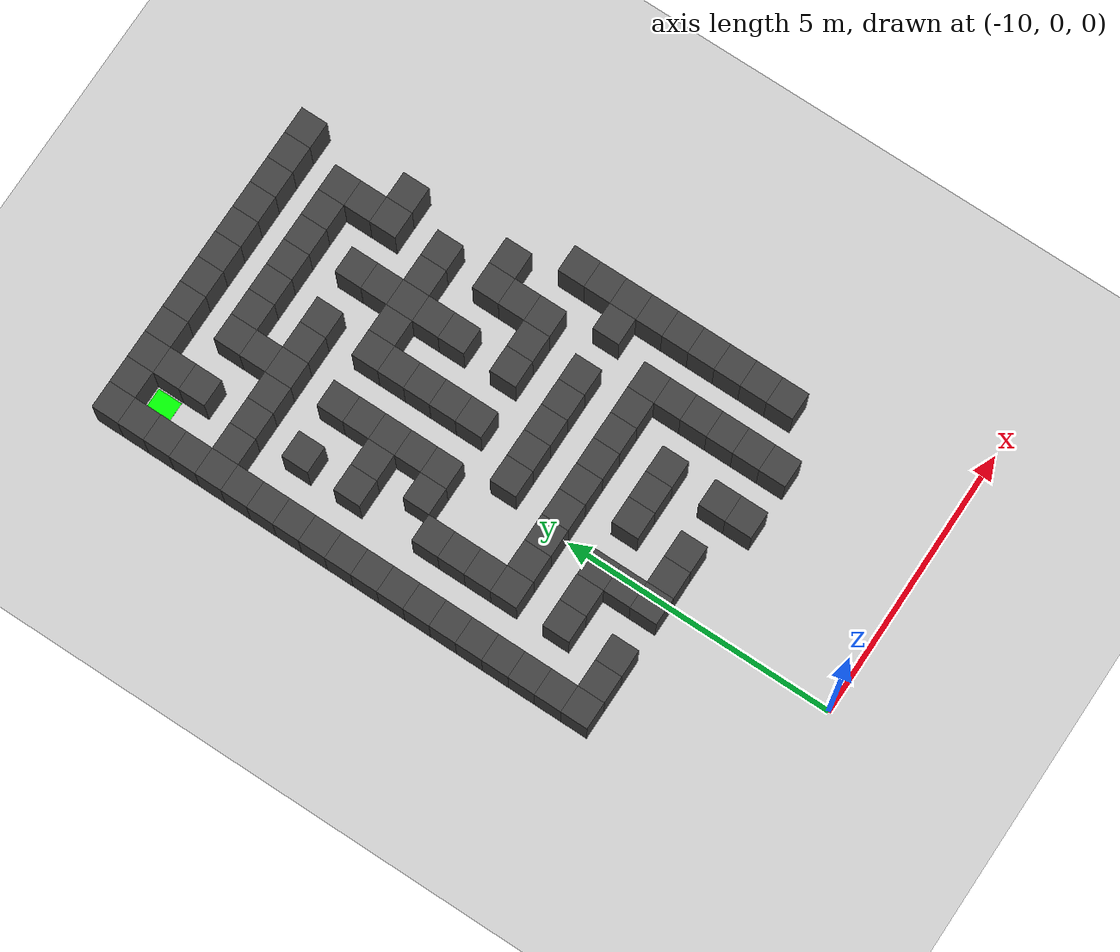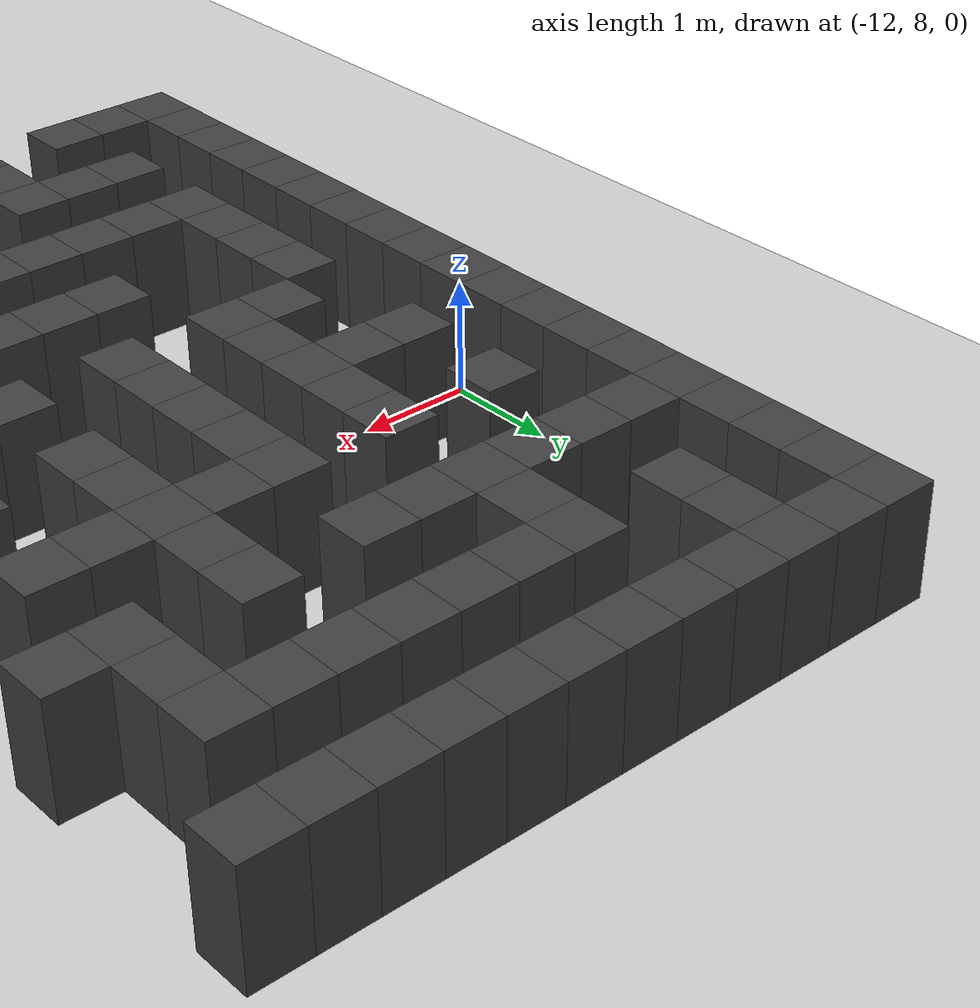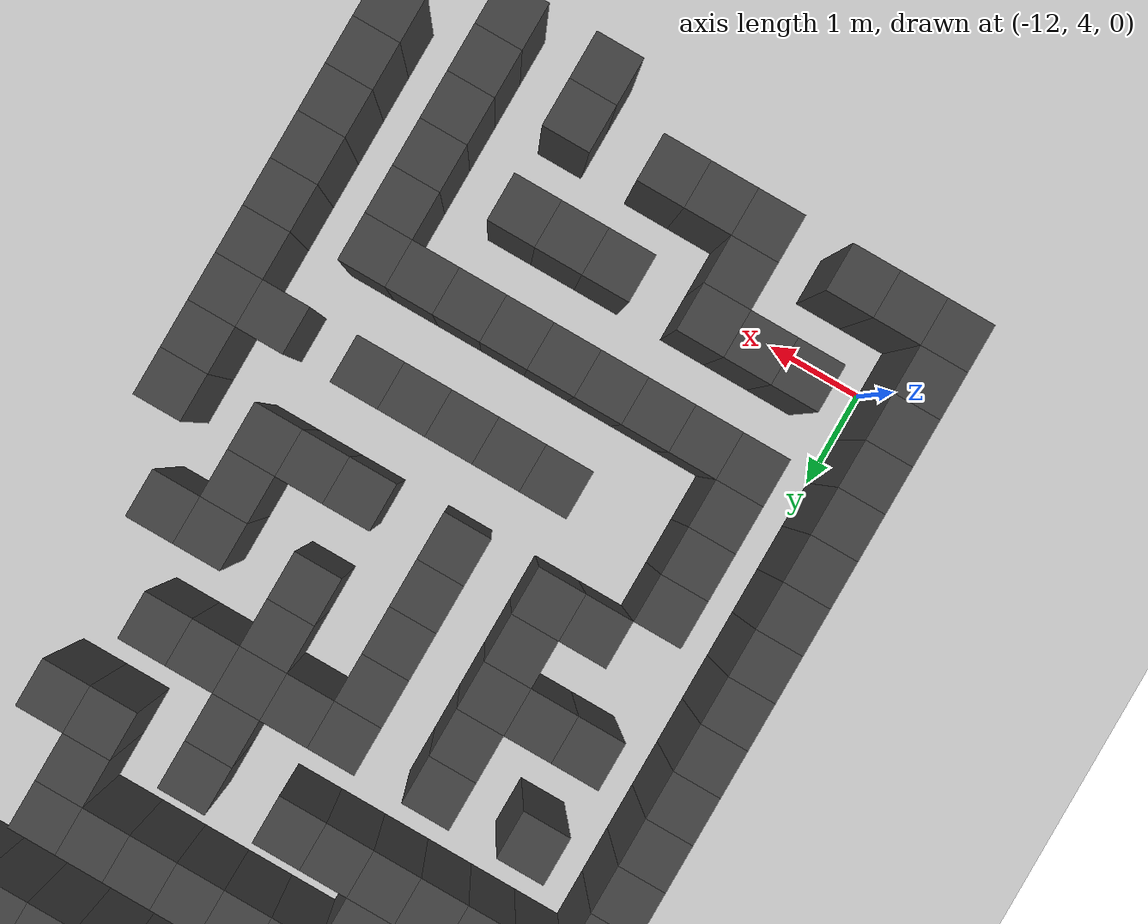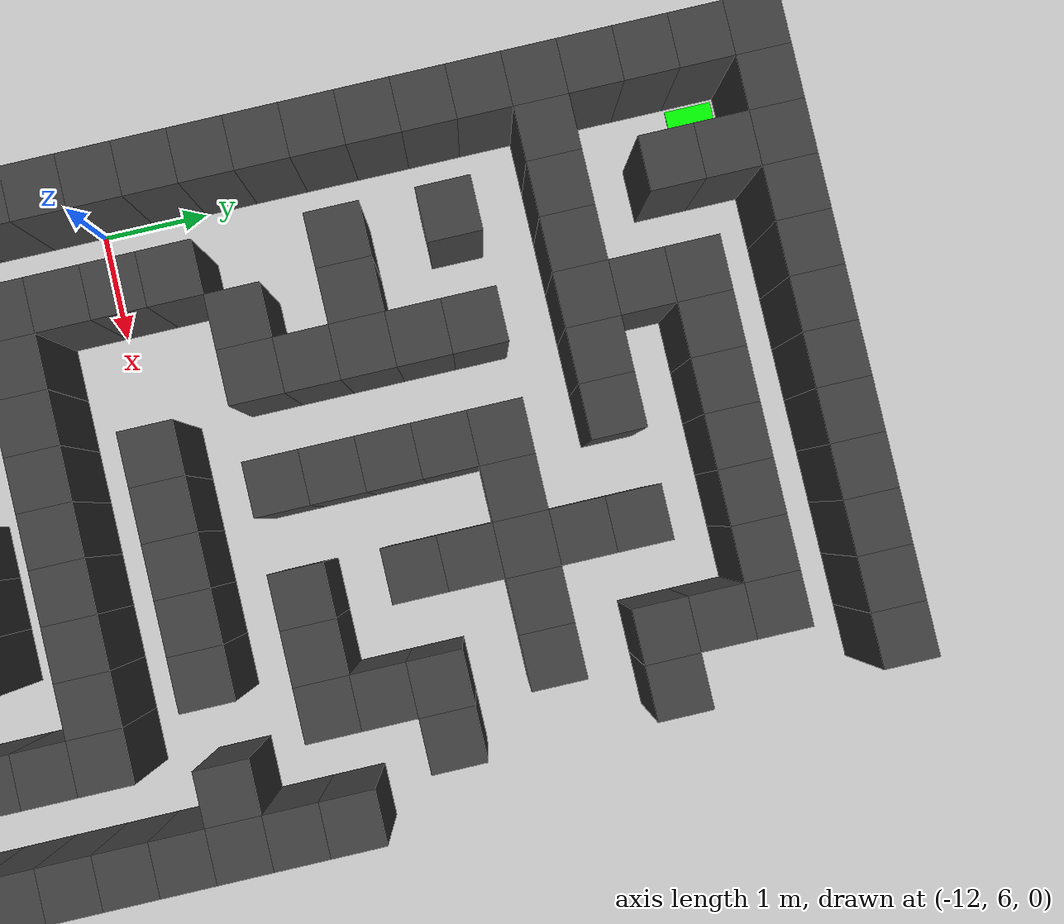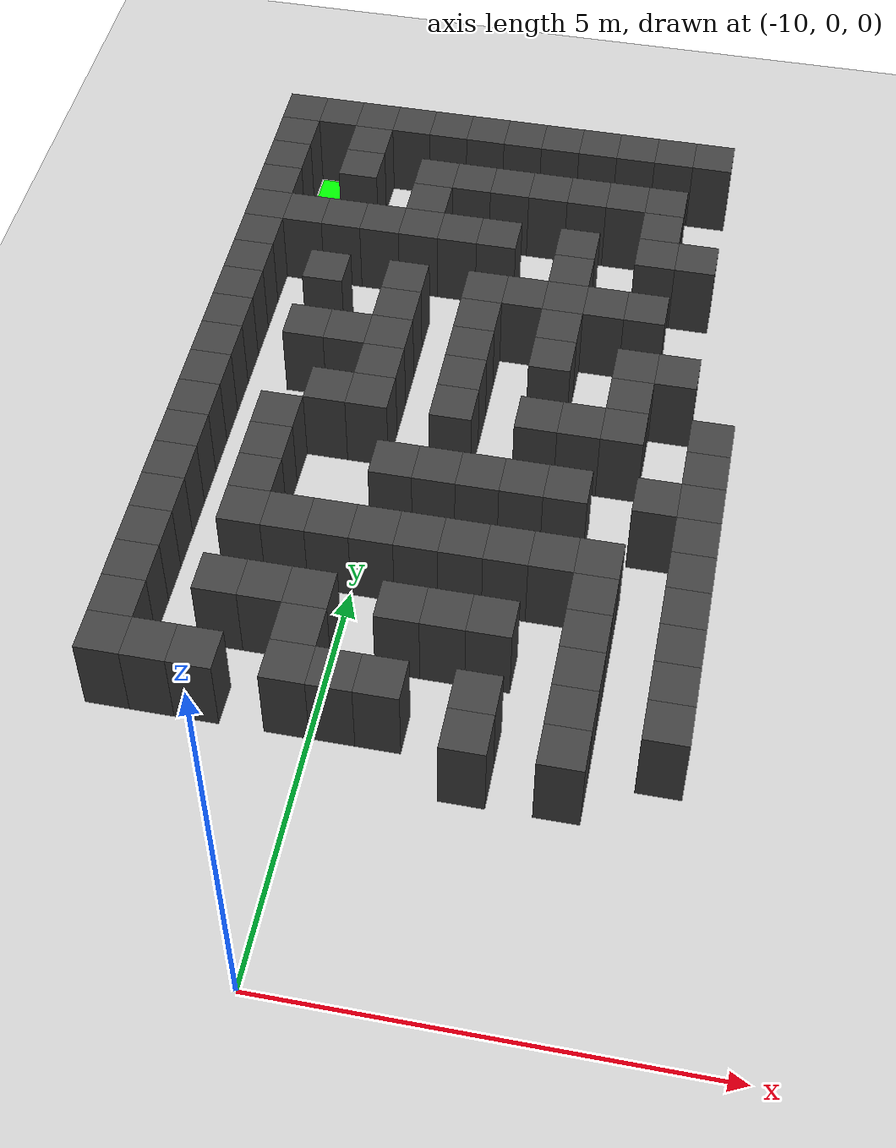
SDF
<sdf version="1.7">
 <world name="map_16271">
  <model name="ground_plane">
   <static>true</static>
   <link name="link">
    <collision name="collision">
     <geometry><plane><normal>0 0 1</normal><size>200 200</size></plane></geometry>
    </collision>
    <visual name="visual">
     <geometry><plane><normal>0 0 1</normal><size>200 200</size></plane></geometry>
     <material><ambient>0.8 0.8 0.8 1</ambient><diffuse>0.8 0.8 0.8 1</diffuse></material>
    </visual>
   </link>
  </model>
  <model name="maze_environment">
   <static>true</static>
   <link name="wall_0">
    <pose>-12.250 12.250 0.500 0 0 0</pose>
    <collision name="col"><geometry><box><size>0.5 0.5 1.0</size></box></geometry></collision>
    <visual name="vis">
     <geometry><box><size>0.5 0.5 1.0</size></box></geometry>
     <material><ambient>0.15 0.15 0.15 1</ambient><diffuse>0.25 0.25 0.25 1</diffuse></material>
    </visual>
   </link>
   <link name="wall_1">
    <pose>-11.750 12.250 0.500 0 0 0</pose>
    <collision name="col"><geometry><box><size>0.5 0.5 1.0</size></box></geometry></collision>
    <visual name="vis">
     <geometry><box><size>0.5 0.5 1.0</size></box></geometry>
     <material><ambient>0.15 0.15 0.15 1</ambient><diffuse>0.25 0.25 0.25 1</diffuse></material>
    </visual>
   </link>
   <link name="wall_2">
    <pose>-11.250 12.250 0.500 0 0 0</pose>
    <collision name="col"><geometry><box><size>0.5 0.5 1.0</size></box></geometry></collision>
    <visual name="vis">
     <geometry><box><size>0.5 0.5 1.0</size></box></geometry>
     <material><ambient>0.15 0.15 0.15 1</ambient><diffuse>0.25 0.25 0.25 1</diffuse></material>
    </visual>
   </link>
   <link name="wall_3">
    <pose>-10.750 12.250 0.500 0 0 0</pose>
    <collision name="col"><geometry><box><size>0.5 0.5 1.0</size></box></geometry></collision>
    <visual name="vis">
     <geometry><box><size>0.5 0.5 1.0</size></box></geometry>
     <material><ambient>0.15 0.15 0.15 1</ambient><diffuse>0.25 0.25 0.25 1</diffuse></material>
    </visual>
   </link>
   <link name="wall_4">
    <pose>-10.250 12.250 0.500 0 0 0</pose>
    <collision name="col"><geometry><box><size>0.5 0.5 1.0</size></box></geometry></collision>
    <visual name="vis">
     <geometry><box><size>0.5 0.5 1.0</size></box></geometry>
     <material><ambient>0.15 0.15 0.15 1</ambient><diffuse>0.25 0.25 0.25 1</diffuse></material>
    </visual>
   </link>
   <link name="wall_5">
    <pose>-9.750 12.250 0.500 0 0 0</pose>
    <collision name="col"><geometry><box><size>0.5 0.5 1.0</size></box></geometry></collision>
    <visual name="vis">
     <geometry><box><size>0.5 0.5 1.0</size></box></geometry>
     <material><ambient>0.15 0.15 0.15 1</ambient><diffuse>0.25 0.25 0.25 1</diffuse></material>
    </visual>
   </link>
   <link name="wall_6">
    <pose>-9.250 12.250 0.500 0 0 0</pose>
    <collision name="col"><geometry><box><size>0.5 0.5 1.0</size></box></geometry></collision>
    <visual name="vis">
     <geometry><box><size>0.5 0.5 1.0</size></box></geometry>
     <material><ambient>0.15 0.15 0.15 1</ambient><diffuse>0.25 0.25 0.25 1</diffuse></material>
    </visual>
   </link>
   <link name="wall_7">
    <pose>-8.750 12.250 0.500 0 0 0</pose>
    <collision name="col"><geometry><box><size>0.5 0.5 1.0</size></box></geometry></collision>
    <visual name="vis">
     <geometry><box><size>0.5 0.5 1.0</size></box></geometry>
     <material><ambient>0.15 0.15 0.15 1</ambient><diffuse>0.25 0.25 0.25 1</diffuse></material>
    </visual>
   </link>
   <link name="wall_8">
    <pose>-8.250 12.250 0.500 0 0 0</pose>
    <collision name="col"><geometry><box><size>0.5 0.5 1.0</size></box></geometry></collision>
    <visual name="vis">
     <geometry><box><size>0.5 0.5 1.0</size></box></geometry>
     <material><ambient>0.15 0.15 0.15 1</ambient><diffuse>0.25 0.25 0.25 1</diffuse></material>
    </visual>
   </link>
   <link name="wall_9">
    <pose>-7.750 12.250 0.500 0 0 0</pose>
    <collision name="col"><geometry><box><size>0.5 0.5 1.0</size></box></geometry></collision>
    <visual name="vis">
     <geometry><box><size>0.5 0.5 1.0</size></box></geometry>
     <material><ambient>0.15 0.15 0.15 1</ambient><diffuse>0.25 0.25 0.25 1</diffuse></material>
    </visual>
   </link>
   <link name="wall_10">
    <pose>-7.250 12.250 0.500 0 0 0</pose>
    <collision name="col"><geometry><box><size>0.5 0.5 1.0</size></box></geometry></collision>
    <visual name="vis">
     <geometry><box><size>0.5 0.5 1.0</size></box></geometry>
     <material><ambient>0.15 0.15 0.15 1</ambient><diffuse>0.25 0.25 0.25 1</diffuse></material>
    </visual>
   </link>
   <link name="wall_11">
    <pose>-6.750 12.250 0.500 0 0 0</pose>
    <collision name="col"><geometry><box><size>0.5 0.5 1.0</size></box></geometry></collision>
    <visual name="vis">
     <geometry><box><size>0.5 0.5 1.0</size></box></geometry>
     <material><ambient>0.15 0.15 0.15 1</ambient><diffuse>0.25 0.25 0.25 1</diffuse></material>
    </visual>
   </link>
   <link name="wall_50">
    <pose>-12.250 11.750 0.500 0 0 0</pose>
    <collision name="col"><geometry><box><size>0.5 0.5 1.0</size></box></geometry></collision>
    <visual name="vis">
     <geometry><box><size>0.5 0.5 1.0</size></box></geometry>
     <material><ambient>0.15 0.15 0.15 1</ambient><diffuse>0.25 0.25 0.25 1</diffuse></material>
    </visual>
   </link>
   <link name="wall_51">
    <pose>-11.250 11.750 0.500 0 0 0</pose>
    <collision name="col"><geometry><box><size>0.5 0.5 1.0</size></box></geometry></collision>
    <visual name="vis">
     <geometry><box><size>0.5 0.5 1.0</size></box></geometry>
     <material><ambient>0.15 0.15 0.15 1</ambient><diffuse>0.25 0.25 0.25 1</diffuse></material>
    </visual>
   </link>
   <link name="wall_58">
    <pose>-12.250 11.250 0.500 0 0 0</pose>
    <collision name="col"><geometry><box><size>0.5 0.5 1.0</size></box></geometry></collision>
    <visual name="vis">
     <geometry><box><size>0.5 0.5 1.0</size></box></geometry>
     <material><ambient>0.15 0.15 0.15 1</ambient><diffuse>0.25 0.25 0.25 1</diffuse></material>
    </visual>
   </link>
   <link name="wall_59">
    <pose>-11.250 11.250 0.500 0 0 0</pose>
    <collision name="col"><geometry><box><size>0.5 0.5 1.0</size></box></geometry></collision>
    <visual name="vis">
     <geometry><box><size>0.5 0.5 1.0</size></box></geometry>
     <material><ambient>0.15 0.15 0.15 1</ambient><diffuse>0.25 0.25 0.25 1</diffuse></material>
    </visual>
   </link>
   <link name="wall_60">
    <pose>-10.250 11.250 0.500 0 0 0</pose>
    <collision name="col"><geometry><box><size>0.5 0.5 1.0</size></box></geometry></collision>
    <visual name="vis">
     <geometry><box><size>0.5 0.5 1.0</size></box></geometry>
     <material><ambient>0.15 0.15 0.15 1</ambient><diffuse>0.25 0.25 0.25 1</diffuse></material>
    </visual>
   </link>
   <link name="wall_61">
    <pose>-9.750 11.250 0.500 0 0 0</pose>
    <collision name="col"><geometry><box><size>0.5 0.5 1.0</size></box></geometry></collision>
    <visual name="vis">
     <geometry><box><size>0.5 0.5 1.0</size></box></geometry>
     <material><ambient>0.15 0.15 0.15 1</ambient><diffuse>0.25 0.25 0.25 1</diffuse></material>
    </visual>
   </link>
   <link name="wall_62">
    <pose>-9.250 11.250 0.500 0 0 0</pose>
    <collision name="col"><geometry><box><size>0.5 0.5 1.0</size></box></geometry></collision>
    <visual name="vis">
     <geometry><box><size>0.5 0.5 1.0</size></box></geometry>
     <material><ambient>0.15 0.15 0.15 1</ambient><diffuse>0.25 0.25 0.25 1</diffuse></material>
    </visual>
   </link>
   <link name="wall_63">
    <pose>-8.750 11.250 0.500 0 0 0</pose>
    <collision name="col"><geometry><box><size>0.5 0.5 1.0</size></box></geometry></collision>
    <visual name="vis">
     <geometry><box><size>0.5 0.5 1.0</size></box></geometry>
     <material><ambient>0.15 0.15 0.15 1</ambient><diffuse>0.25 0.25 0.25 1</diffuse></material>
    </visual>
   </link>
   <link name="wall_64">
    <pose>-8.250 11.250 0.500 0 0 0</pose>
    <collision name="col"><geometry><box><size>0.5 0.5 1.0</size></box></geometry></collision>
    <visual name="vis">
     <geometry><box><size>0.5 0.5 1.0</size></box></geometry>
     <material><ambient>0.15 0.15 0.15 1</ambient><diffuse>0.25 0.25 0.25 1</diffuse></material>
    </visual>
   </link>
   <link name="wall_65">
    <pose>-7.750 11.250 0.500 0 0 0</pose>
    <collision name="col"><geometry><box><size>0.5 0.5 1.0</size></box></geometry></collision>
    <visual name="vis">
     <geometry><box><size>0.5 0.5 1.0</size></box></geometry>
     <material><ambient>0.15 0.15 0.15 1</ambient><diffuse>0.25 0.25 0.25 1</diffuse></material>
    </visual>
   </link>
   <link name="wall_66">
    <pose>-7.250 11.250 0.500 0 0 0</pose>
    <collision name="col"><geometry><box><size>0.5 0.5 1.0</size></box></geometry></collision>
    <visual name="vis">
     <geometry><box><size>0.5 0.5 1.0</size></box></geometry>
     <material><ambient>0.15 0.15 0.15 1</ambient><diffuse>0.25 0.25 0.25 1</diffuse></material>
    </visual>
   </link>
   <link name="wall_95">
    <pose>-12.250 10.750 0.500 0 0 0</pose>
    <collision name="col"><geometry><box><size>0.5 0.5 1.0</size></box></geometry></collision>
    <visual name="vis">
     <geometry><box><size>0.5 0.5 1.0</size></box></geometry>
     <material><ambient>0.15 0.15 0.15 1</ambient><diffuse>0.25 0.25 0.25 1</diffuse></material>
    </visual>
   </link>
   <link name="wall_96">
    <pose>-10.250 10.750 0.500 0 0 0</pose>
    <collision name="col"><geometry><box><size>0.5 0.5 1.0</size></box></geometry></collision>
    <visual name="vis">
     <geometry><box><size>0.5 0.5 1.0</size></box></geometry>
     <material><ambient>0.15 0.15 0.15 1</ambient><diffuse>0.25 0.25 0.25 1</diffuse></material>
    </visual>
   </link>
   <link name="wall_97">
    <pose>-7.250 10.750 0.500 0 0 0</pose>
    <collision name="col"><geometry><box><size>0.5 0.5 1.0</size></box></geometry></collision>
    <visual name="vis">
     <geometry><box><size>0.5 0.5 1.0</size></box></geometry>
     <material><ambient>0.15 0.15 0.15 1</ambient><diffuse>0.25 0.25 0.25 1</diffuse></material>
    </visual>
   </link>
   <link name="wall_106">
    <pose>-12.250 10.250 0.500 0 0 0</pose>
    <collision name="col"><geometry><box><size>0.5 0.5 1.0</size></box></geometry></collision>
    <visual name="vis">
     <geometry><box><size>0.5 0.5 1.0</size></box></geometry>
     <material><ambient>0.15 0.15 0.15 1</ambient><diffuse>0.25 0.25 0.25 1</diffuse></material>
    </visual>
   </link>
   <link name="wall_107">
    <pose>-11.750 10.250 0.500 0 0 0</pose>
    <collision name="col"><geometry><box><size>0.5 0.5 1.0</size></box></geometry></collision>
    <visual name="vis">
     <geometry><box><size>0.5 0.5 1.0</size></box></geometry>
     <material><ambient>0.15 0.15 0.15 1</ambient><diffuse>0.25 0.25 0.25 1</diffuse></material>
    </visual>
   </link>
   <link name="wall_108">
    <pose>-11.250 10.250 0.500 0 0 0</pose>
    <collision name="col"><geometry><box><size>0.5 0.5 1.0</size></box></geometry></collision>
    <visual name="vis">
     <geometry><box><size>0.5 0.5 1.0</size></box></geometry>
     <material><ambient>0.15 0.15 0.15 1</ambient><diffuse>0.25 0.25 0.25 1</diffuse></material>
    </visual>
   </link>
   <link name="wall_109">
    <pose>-10.750 10.250 0.500 0 0 0</pose>
    <collision name="col"><geometry><box><size>0.5 0.5 1.0</size></box></geometry></collision>
    <visual name="vis">
     <geometry><box><size>0.5 0.5 1.0</size></box></geometry>
     <material><ambient>0.15 0.15 0.15 1</ambient><diffuse>0.25 0.25 0.25 1</diffuse></material>
    </visual>
   </link>
   <link name="wall_110">
    <pose>-10.250 10.250 0.500 0 0 0</pose>
    <collision name="col"><geometry><box><size>0.5 0.5 1.0</size></box></geometry></collision>
    <visual name="vis">
     <geometry><box><size>0.5 0.5 1.0</size></box></geometry>
     <material><ambient>0.15 0.15 0.15 1</ambient><diffuse>0.25 0.25 0.25 1</diffuse></material>
    </visual>
   </link>
   <link name="wall_111">
    <pose>-9.750 10.250 0.500 0 0 0</pose>
    <collision name="col"><geometry><box><size>0.5 0.5 1.0</size></box></geometry></collision>
    <visual name="vis">
     <geometry><box><size>0.5 0.5 1.0</size></box></geometry>
     <material><ambient>0.15 0.15 0.15 1</ambient><diffuse>0.25 0.25 0.25 1</diffuse></material>
    </visual>
   </link>
   <link name="wall_112">
    <pose>-9.250 10.250 0.500 0 0 0</pose>
    <collision name="col"><geometry><box><size>0.5 0.5 1.0</size></box></geometry></collision>
    <visual name="vis">
     <geometry><box><size>0.5 0.5 1.0</size></box></geometry>
     <material><ambient>0.15 0.15 0.15 1</ambient><diffuse>0.25 0.25 0.25 1</diffuse></material>
    </visual>
   </link>
   <link name="wall_113">
    <pose>-8.250 10.250 0.500 0 0 0</pose>
    <collision name="col"><geometry><box><size>0.5 0.5 1.0</size></box></geometry></collision>
    <visual name="vis">
     <geometry><box><size>0.5 0.5 1.0</size></box></geometry>
     <material><ambient>0.15 0.15 0.15 1</ambient><diffuse>0.25 0.25 0.25 1</diffuse></material>
    </visual>
   </link>
   <link name="wall_114">
    <pose>-7.250 10.250 0.500 0 0 0</pose>
    <collision name="col"><geometry><box><size>0.5 0.5 1.0</size></box></geometry></collision>
    <visual name="vis">
     <geometry><box><size>0.5 0.5 1.0</size></box></geometry>
     <material><ambient>0.15 0.15 0.15 1</ambient><diffuse>0.25 0.25 0.25 1</diffuse></material>
    </visual>
   </link>
   <link name="wall_115">
    <pose>-6.750 10.250 0.500 0 0 0</pose>
    <collision name="col"><geometry><box><size>0.5 0.5 1.0</size></box></geometry></collision>
    <visual name="vis">
     <geometry><box><size>0.5 0.5 1.0</size></box></geometry>
     <material><ambient>0.15 0.15 0.15 1</ambient><diffuse>0.25 0.25 0.25 1</diffuse></material>
    </visual>
   </link>
   <link name="wall_148">
    <pose>-12.250 9.750 0.500 0 0 0</pose>
    <collision name="col"><geometry><box><size>0.5 0.5 1.0</size></box></geometry></collision>
    <visual name="vis">
     <geometry><box><size>0.5 0.5 1.0</size></box></geometry>
     <material><ambient>0.15 0.15 0.15 1</ambient><diffuse>0.25 0.25 0.25 1</diffuse></material>
    </visual>
   </link>
   <link name="wall_149">
    <pose>-8.250 9.750 0.500 0 0 0</pose>
    <collision name="col"><geometry><box><size>0.5 0.5 1.0</size></box></geometry></collision>
    <visual name="vis">
     <geometry><box><size>0.5 0.5 1.0</size></box></geometry>
     <material><ambient>0.15 0.15 0.15 1</ambient><diffuse>0.25 0.25 0.25 1</diffuse></material>
    </visual>
   </link>
   <link name="wall_159">
    <pose>-12.250 9.250 0.500 0 0 0</pose>
    <collision name="col"><geometry><box><size>0.5 0.5 1.0</size></box></geometry></collision>
    <visual name="vis">
     <geometry><box><size>0.5 0.5 1.0</size></box></geometry>
     <material><ambient>0.15 0.15 0.15 1</ambient><diffuse>0.25 0.25 0.25 1</diffuse></material>
    </visual>
   </link>
   <link name="wall_160">
    <pose>-11.250 9.250 0.500 0 0 0</pose>
    <collision name="col"><geometry><box><size>0.5 0.5 1.0</size></box></geometry></collision>
    <visual name="vis">
     <geometry><box><size>0.5 0.5 1.0</size></box></geometry>
     <material><ambient>0.15 0.15 0.15 1</ambient><diffuse>0.25 0.25 0.25 1</diffuse></material>
    </visual>
   </link>
   <link name="wall_161">
    <pose>-10.250 9.250 0.500 0 0 0</pose>
    <collision name="col"><geometry><box><size>0.5 0.5 1.0</size></box></geometry></collision>
    <visual name="vis">
     <geometry><box><size>0.5 0.5 1.0</size></box></geometry>
     <material><ambient>0.15 0.15 0.15 1</ambient><diffuse>0.25 0.25 0.25 1</diffuse></material>
    </visual>
   </link>
   <link name="wall_162">
    <pose>-9.250 9.250 0.500 0 0 0</pose>
    <collision name="col"><geometry><box><size>0.5 0.5 1.0</size></box></geometry></collision>
    <visual name="vis">
     <geometry><box><size>0.5 0.5 1.0</size></box></geometry>
     <material><ambient>0.15 0.15 0.15 1</ambient><diffuse>0.25 0.25 0.25 1</diffuse></material>
    </visual>
   </link>
   <link name="wall_163">
    <pose>-8.750 9.250 0.500 0 0 0</pose>
    <collision name="col"><geometry><box><size>0.5 0.5 1.0</size></box></geometry></collision>
    <visual name="vis">
     <geometry><box><size>0.5 0.5 1.0</size></box></geometry>
     <material><ambient>0.15 0.15 0.15 1</ambient><diffuse>0.25 0.25 0.25 1</diffuse></material>
    </visual>
   </link>
   <link name="wall_164">
    <pose>-8.250 9.250 0.500 0 0 0</pose>
    <collision name="col"><geometry><box><size>0.5 0.5 1.0</size></box></geometry></collision>
    <visual name="vis">
     <geometry><box><size>0.5 0.5 1.0</size></box></geometry>
     <material><ambient>0.15 0.15 0.15 1</ambient><diffuse>0.25 0.25 0.25 1</diffuse></material>
    </visual>
   </link>
   <link name="wall_165">
    <pose>-7.750 9.250 0.500 0 0 0</pose>
    <collision name="col"><geometry><box><size>0.5 0.5 1.0</size></box></geometry></collision>
    <visual name="vis">
     <geometry><box><size>0.5 0.5 1.0</size></box></geometry>
     <material><ambient>0.15 0.15 0.15 1</ambient><diffuse>0.25 0.25 0.25 1</diffuse></material>
    </visual>
   </link>
   <link name="wall_166">
    <pose>-7.250 9.250 0.500 0 0 0</pose>
    <collision name="col"><geometry><box><size>0.5 0.5 1.0</size></box></geometry></collision>
    <visual name="vis">
     <geometry><box><size>0.5 0.5 1.0</size></box></geometry>
     <material><ambient>0.15 0.15 0.15 1</ambient><diffuse>0.25 0.25 0.25 1</diffuse></material>
    </visual>
   </link>
   <link name="wall_190">
    <pose>-12.250 8.750 0.500 0 0 0</pose>
    <collision name="col"><geometry><box><size>0.5 0.5 1.0</size></box></geometry></collision>
    <visual name="vis">
     <geometry><box><size>0.5 0.5 1.0</size></box></geometry>
     <material><ambient>0.15 0.15 0.15 1</ambient><diffuse>0.25 0.25 0.25 1</diffuse></material>
    </visual>
   </link>
   <link name="wall_191">
    <pose>-10.250 8.750 0.500 0 0 0</pose>
    <collision name="col"><geometry><box><size>0.5 0.5 1.0</size></box></geometry></collision>
    <visual name="vis">
     <geometry><box><size>0.5 0.5 1.0</size></box></geometry>
     <material><ambient>0.15 0.15 0.15 1</ambient><diffuse>0.25 0.25 0.25 1</diffuse></material>
    </visual>
   </link>
   <link name="wall_192">
    <pose>-9.250 8.750 0.500 0 0 0</pose>
    <collision name="col"><geometry><box><size>0.5 0.5 1.0</size></box></geometry></collision>
    <visual name="vis">
     <geometry><box><size>0.5 0.5 1.0</size></box></geometry>
     <material><ambient>0.15 0.15 0.15 1</ambient><diffuse>0.25 0.25 0.25 1</diffuse></material>
    </visual>
   </link>
   <link name="wall_193">
    <pose>-8.250 8.750 0.500 0 0 0</pose>
    <collision name="col"><geometry><box><size>0.5 0.5 1.0</size></box></geometry></collision>
    <visual name="vis">
     <geometry><box><size>0.5 0.5 1.0</size></box></geometry>
     <material><ambient>0.15 0.15 0.15 1</ambient><diffuse>0.25 0.25 0.25 1</diffuse></material>
    </visual>
   </link>
   <link name="wall_206">
    <pose>-12.250 8.250 0.500 0 0 0</pose>
    <collision name="col"><geometry><box><size>0.5 0.5 1.0</size></box></geometry></collision>
    <visual name="vis">
     <geometry><box><size>0.5 0.5 1.0</size></box></geometry>
     <material><ambient>0.15 0.15 0.15 1</ambient><diffuse>0.25 0.25 0.25 1</diffuse></material>
    </visual>
   </link>
   <link name="wall_207">
    <pose>-11.250 8.250 0.500 0 0 0</pose>
    <collision name="col"><geometry><box><size>0.5 0.5 1.0</size></box></geometry></collision>
    <visual name="vis">
     <geometry><box><size>0.5 0.5 1.0</size></box></geometry>
     <material><ambient>0.15 0.15 0.15 1</ambient><diffuse>0.25 0.25 0.25 1</diffuse></material>
    </visual>
   </link>
   <link name="wall_208">
    <pose>-10.750 8.250 0.500 0 0 0</pose>
    <collision name="col"><geometry><box><size>0.5 0.5 1.0</size></box></geometry></collision>
    <visual name="vis">
     <geometry><box><size>0.5 0.5 1.0</size></box></geometry>
     <material><ambient>0.15 0.15 0.15 1</ambient><diffuse>0.25 0.25 0.25 1</diffuse></material>
    </visual>
   </link>
   <link name="wall_209">
    <pose>-10.250 8.250 0.500 0 0 0</pose>
    <collision name="col"><geometry><box><size>0.5 0.5 1.0</size></box></geometry></collision>
    <visual name="vis">
     <geometry><box><size>0.5 0.5 1.0</size></box></geometry>
     <material><ambient>0.15 0.15 0.15 1</ambient><diffuse>0.25 0.25 0.25 1</diffuse></material>
    </visual>
   </link>
   <link name="wall_210">
    <pose>-9.250 8.250 0.500 0 0 0</pose>
    <collision name="col"><geometry><box><size>0.5 0.5 1.0</size></box></geometry></collision>
    <visual name="vis">
     <geometry><box><size>0.5 0.5 1.0</size></box></geometry>
     <material><ambient>0.15 0.15 0.15 1</ambient><diffuse>0.25 0.25 0.25 1</diffuse></material>
    </visual>
   </link>
   <link name="wall_211">
    <pose>-8.250 8.250 0.500 0 0 0</pose>
    <collision name="col"><geometry><box><size>0.5 0.5 1.0</size></box></geometry></collision>
    <visual name="vis">
     <geometry><box><size>0.5 0.5 1.0</size></box></geometry>
     <material><ambient>0.15 0.15 0.15 1</ambient><diffuse>0.25 0.25 0.25 1</diffuse></material>
    </visual>
   </link>
   <link name="wall_212">
    <pose>-7.250 8.250 0.500 0 0 0</pose>
    <collision name="col"><geometry><box><size>0.5 0.5 1.0</size></box></geometry></collision>
    <visual name="vis">
     <geometry><box><size>0.5 0.5 1.0</size></box></geometry>
     <material><ambient>0.15 0.15 0.15 1</ambient><diffuse>0.25 0.25 0.25 1</diffuse></material>
    </visual>
   </link>
   <link name="wall_213">
    <pose>-6.750 8.250 0.500 0 0 0</pose>
    <collision name="col"><geometry><box><size>0.5 0.5 1.0</size></box></geometry></collision>
    <visual name="vis">
     <geometry><box><size>0.5 0.5 1.0</size></box></geometry>
     <material><ambient>0.15 0.15 0.15 1</ambient><diffuse>0.25 0.25 0.25 1</diffuse></material>
    </visual>
   </link>
   <link name="wall_238">
    <pose>-12.250 7.750 0.500 0 0 0</pose>
    <collision name="col"><geometry><box><size>0.5 0.5 1.0</size></box></geometry></collision>
    <visual name="vis">
     <geometry><box><size>0.5 0.5 1.0</size></box></geometry>
     <material><ambient>0.15 0.15 0.15 1</ambient><diffuse>0.25 0.25 0.25 1</diffuse></material>
    </visual>
   </link>
   <link name="wall_239">
    <pose>-10.250 7.750 0.500 0 0 0</pose>
    <collision name="col"><geometry><box><size>0.5 0.5 1.0</size></box></geometry></collision>
    <visual name="vis">
     <geometry><box><size>0.5 0.5 1.0</size></box></geometry>
     <material><ambient>0.15 0.15 0.15 1</ambient><diffuse>0.25 0.25 0.25 1</diffuse></material>
    </visual>
   </link>
   <link name="wall_240">
    <pose>-9.250 7.750 0.500 0 0 0</pose>
    <collision name="col"><geometry><box><size>0.5 0.5 1.0</size></box></geometry></collision>
    <visual name="vis">
     <geometry><box><size>0.5 0.5 1.0</size></box></geometry>
     <material><ambient>0.15 0.15 0.15 1</ambient><diffuse>0.25 0.25 0.25 1</diffuse></material>
    </visual>
   </link>
   <link name="wall_241">
    <pose>-7.250 7.750 0.500 0 0 0</pose>
    <collision name="col"><geometry><box><size>0.5 0.5 1.0</size></box></geometry></collision>
    <visual name="vis">
     <geometry><box><size>0.5 0.5 1.0</size></box></geometry>
     <material><ambient>0.15 0.15 0.15 1</ambient><diffuse>0.25 0.25 0.25 1</diffuse></material>
    </visual>
   </link>
   <link name="wall_250">
    <pose>-12.250 7.250 0.500 0 0 0</pose>
    <collision name="col"><geometry><box><size>0.5 0.5 1.0</size></box></geometry></collision>
    <visual name="vis">
     <geometry><box><size>0.5 0.5 1.0</size></box></geometry>
     <material><ambient>0.15 0.15 0.15 1</ambient><diffuse>0.25 0.25 0.25 1</diffuse></material>
    </visual>
   </link>
   <link name="wall_251">
    <pose>-10.750 7.250 0.500 0 0 0</pose>
    <collision name="col"><geometry><box><size>0.5 0.5 1.0</size></box></geometry></collision>
    <visual name="vis">
     <geometry><box><size>0.5 0.5 1.0</size></box></geometry>
     <material><ambient>0.15 0.15 0.15 1</ambient><diffuse>0.25 0.25 0.25 1</diffuse></material>
    </visual>
   </link>
   <link name="wall_252">
    <pose>-10.250 7.250 0.500 0 0 0</pose>
    <collision name="col"><geometry><box><size>0.5 0.5 1.0</size></box></geometry></collision>
    <visual name="vis">
     <geometry><box><size>0.5 0.5 1.0</size></box></geometry>
     <material><ambient>0.15 0.15 0.15 1</ambient><diffuse>0.25 0.25 0.25 1</diffuse></material>
    </visual>
   </link>
   <link name="wall_253">
    <pose>-9.250 7.250 0.500 0 0 0</pose>
    <collision name="col"><geometry><box><size>0.5 0.5 1.0</size></box></geometry></collision>
    <visual name="vis">
     <geometry><box><size>0.5 0.5 1.0</size></box></geometry>
     <material><ambient>0.15 0.15 0.15 1</ambient><diffuse>0.25 0.25 0.25 1</diffuse></material>
    </visual>
   </link>
   <link name="wall_254">
    <pose>-8.250 7.250 0.500 0 0 0</pose>
    <collision name="col"><geometry><box><size>0.5 0.5 1.0</size></box></geometry></collision>
    <visual name="vis">
     <geometry><box><size>0.5 0.5 1.0</size></box></geometry>
     <material><ambient>0.15 0.15 0.15 1</ambient><diffuse>0.25 0.25 0.25 1</diffuse></material>
    </visual>
   </link>
   <link name="wall_255">
    <pose>-7.750 7.250 0.500 0 0 0</pose>
    <collision name="col"><geometry><box><size>0.5 0.5 1.0</size></box></geometry></collision>
    <visual name="vis">
     <geometry><box><size>0.5 0.5 1.0</size></box></geometry>
     <material><ambient>0.15 0.15 0.15 1</ambient><diffuse>0.25 0.25 0.25 1</diffuse></material>
    </visual>
   </link>
   <link name="wall_256">
    <pose>-7.250 7.250 0.500 0 0 0</pose>
    <collision name="col"><geometry><box><size>0.5 0.5 1.0</size></box></geometry></collision>
    <visual name="vis">
     <geometry><box><size>0.5 0.5 1.0</size></box></geometry>
     <material><ambient>0.15 0.15 0.15 1</ambient><diffuse>0.25 0.25 0.25 1</diffuse></material>
    </visual>
   </link>
   <link name="wall_257">
    <pose>-6.250 7.250 0.500 0 0 0</pose>
    <collision name="col"><geometry><box><size>0.5 0.5 1.0</size></box></geometry></collision>
    <visual name="vis">
     <geometry><box><size>0.5 0.5 1.0</size></box></geometry>
     <material><ambient>0.15 0.15 0.15 1</ambient><diffuse>0.25 0.25 0.25 1</diffuse></material>
    </visual>
   </link>
   <link name="wall_287">
    <pose>-12.250 6.750 0.500 0 0 0</pose>
    <collision name="col"><geometry><box><size>0.5 0.5 1.0</size></box></geometry></collision>
    <visual name="vis">
     <geometry><box><size>0.5 0.5 1.0</size></box></geometry>
     <material><ambient>0.15 0.15 0.15 1</ambient><diffuse>0.25 0.25 0.25 1</diffuse></material>
    </visual>
   </link>
   <link name="wall_288">
    <pose>-11.250 6.750 0.500 0 0 0</pose>
    <collision name="col"><geometry><box><size>0.5 0.5 1.0</size></box></geometry></collision>
    <visual name="vis">
     <geometry><box><size>0.5 0.5 1.0</size></box></geometry>
     <material><ambient>0.15 0.15 0.15 1</ambient><diffuse>0.25 0.25 0.25 1</diffuse></material>
    </visual>
   </link>
   <link name="wall_289">
    <pose>-6.250 6.750 0.500 0 0 0</pose>
    <collision name="col"><geometry><box><size>0.5 0.5 1.0</size></box></geometry></collision>
    <visual name="vis">
     <geometry><box><size>0.5 0.5 1.0</size></box></geometry>
     <material><ambient>0.15 0.15 0.15 1</ambient><diffuse>0.25 0.25 0.25 1</diffuse></material>
    </visual>
   </link>
   <link name="wall_296">
    <pose>-12.250 6.250 0.500 0 0 0</pose>
    <collision name="col"><geometry><box><size>0.5 0.5 1.0</size></box></geometry></collision>
    <visual name="vis">
     <geometry><box><size>0.5 0.5 1.0</size></box></geometry>
     <material><ambient>0.15 0.15 0.15 1</ambient><diffuse>0.25 0.25 0.25 1</diffuse></material>
    </visual>
   </link>
   <link name="wall_297">
    <pose>-11.250 6.250 0.500 0 0 0</pose>
    <collision name="col"><geometry><box><size>0.5 0.5 1.0</size></box></geometry></collision>
    <visual name="vis">
     <geometry><box><size>0.5 0.5 1.0</size></box></geometry>
     <material><ambient>0.15 0.15 0.15 1</ambient><diffuse>0.25 0.25 0.25 1</diffuse></material>
    </visual>
   </link>
   <link name="wall_298">
    <pose>-9.750 6.250 0.500 0 0 0</pose>
    <collision name="col"><geometry><box><size>0.5 0.5 1.0</size></box></geometry></collision>
    <visual name="vis">
     <geometry><box><size>0.5 0.5 1.0</size></box></geometry>
     <material><ambient>0.15 0.15 0.15 1</ambient><diffuse>0.25 0.25 0.25 1</diffuse></material>
    </visual>
   </link>
   <link name="wall_299">
    <pose>-9.250 6.250 0.500 0 0 0</pose>
    <collision name="col"><geometry><box><size>0.5 0.5 1.0</size></box></geometry></collision>
    <visual name="vis">
     <geometry><box><size>0.5 0.5 1.0</size></box></geometry>
     <material><ambient>0.15 0.15 0.15 1</ambient><diffuse>0.25 0.25 0.25 1</diffuse></material>
    </visual>
   </link>
   <link name="wall_300">
    <pose>-8.750 6.250 0.500 0 0 0</pose>
    <collision name="col"><geometry><box><size>0.5 0.5 1.0</size></box></geometry></collision>
    <visual name="vis">
     <geometry><box><size>0.5 0.5 1.0</size></box></geometry>
     <material><ambient>0.15 0.15 0.15 1</ambient><diffuse>0.25 0.25 0.25 1</diffuse></material>
    </visual>
   </link>
   <link name="wall_301">
    <pose>-8.250 6.250 0.500 0 0 0</pose>
    <collision name="col"><geometry><box><size>0.5 0.5 1.0</size></box></geometry></collision>
    <visual name="vis">
     <geometry><box><size>0.5 0.5 1.0</size></box></geometry>
     <material><ambient>0.15 0.15 0.15 1</ambient><diffuse>0.25 0.25 0.25 1</diffuse></material>
    </visual>
   </link>
   <link name="wall_302">
    <pose>-7.750 6.250 0.500 0 0 0</pose>
    <collision name="col"><geometry><box><size>0.5 0.5 1.0</size></box></geometry></collision>
    <visual name="vis">
     <geometry><box><size>0.5 0.5 1.0</size></box></geometry>
     <material><ambient>0.15 0.15 0.15 1</ambient><diffuse>0.25 0.25 0.25 1</diffuse></material>
    </visual>
   </link>
   <link name="wall_303">
    <pose>-6.750 6.250 0.500 0 0 0</pose>
    <collision name="col"><geometry><box><size>0.5 0.5 1.0</size></box></geometry></collision>
    <visual name="vis">
     <geometry><box><size>0.5 0.5 1.0</size></box></geometry>
     <material><ambient>0.15 0.15 0.15 1</ambient><diffuse>0.25 0.25 0.25 1</diffuse></material>
    </visual>
   </link>
   <link name="wall_304">
    <pose>-6.250 6.250 0.500 0 0 0</pose>
    <collision name="col"><geometry><box><size>0.5 0.5 1.0</size></box></geometry></collision>
    <visual name="vis">
     <geometry><box><size>0.5 0.5 1.0</size></box></geometry>
     <material><ambient>0.15 0.15 0.15 1</ambient><diffuse>0.25 0.25 0.25 1</diffuse></material>
    </visual>
   </link>
   <link name="wall_332">
    <pose>-12.250 5.750 0.500 0 0 0</pose>
    <collision name="col"><geometry><box><size>0.5 0.5 1.0</size></box></geometry></collision>
    <visual name="vis">
     <geometry><box><size>0.5 0.5 1.0</size></box></geometry>
     <material><ambient>0.15 0.15 0.15 1</ambient><diffuse>0.25 0.25 0.25 1</diffuse></material>
    </visual>
   </link>
   <link name="wall_333">
    <pose>-11.250 5.750 0.500 0 0 0</pose>
    <collision name="col"><geometry><box><size>0.5 0.5 1.0</size></box></geometry></collision>
    <visual name="vis">
     <geometry><box><size>0.5 0.5 1.0</size></box></geometry>
     <material><ambient>0.15 0.15 0.15 1</ambient><diffuse>0.25 0.25 0.25 1</diffuse></material>
    </visual>
   </link>
   <link name="wall_334">
    <pose>-6.250 5.750 0.500 0 0 0</pose>
    <collision name="col"><geometry><box><size>0.5 0.5 1.0</size></box></geometry></collision>
    <visual name="vis">
     <geometry><box><size>0.5 0.5 1.0</size></box></geometry>
     <material><ambient>0.15 0.15 0.15 1</ambient><diffuse>0.25 0.25 0.25 1</diffuse></material>
    </visual>
   </link>
   <link name="wall_343">
    <pose>-12.250 5.250 0.500 0 0 0</pose>
    <collision name="col"><geometry><box><size>0.5 0.5 1.0</size></box></geometry></collision>
    <visual name="vis">
     <geometry><box><size>0.5 0.5 1.0</size></box></geometry>
     <material><ambient>0.15 0.15 0.15 1</ambient><diffuse>0.25 0.25 0.25 1</diffuse></material>
    </visual>
   </link>
   <link name="wall_344">
    <pose>-11.250 5.250 0.500 0 0 0</pose>
    <collision name="col"><geometry><box><size>0.5 0.5 1.0</size></box></geometry></collision>
    <visual name="vis">
     <geometry><box><size>0.5 0.5 1.0</size></box></geometry>
     <material><ambient>0.15 0.15 0.15 1</ambient><diffuse>0.25 0.25 0.25 1</diffuse></material>
    </visual>
   </link>
   <link name="wall_345">
    <pose>-10.750 5.250 0.500 0 0 0</pose>
    <collision name="col"><geometry><box><size>0.5 0.5 1.0</size></box></geometry></collision>
    <visual name="vis">
     <geometry><box><size>0.5 0.5 1.0</size></box></geometry>
     <material><ambient>0.15 0.15 0.15 1</ambient><diffuse>0.25 0.25 0.25 1</diffuse></material>
    </visual>
   </link>
   <link name="wall_346">
    <pose>-10.250 5.250 0.500 0 0 0</pose>
    <collision name="col"><geometry><box><size>0.5 0.5 1.0</size></box></geometry></collision>
    <visual name="vis">
     <geometry><box><size>0.5 0.5 1.0</size></box></geometry>
     <material><ambient>0.15 0.15 0.15 1</ambient><diffuse>0.25 0.25 0.25 1</diffuse></material>
    </visual>
   </link>
   <link name="wall_347">
    <pose>-9.750 5.250 0.500 0 0 0</pose>
    <collision name="col"><geometry><box><size>0.5 0.5 1.0</size></box></geometry></collision>
    <visual name="vis">
     <geometry><box><size>0.5 0.5 1.0</size></box></geometry>
     <material><ambient>0.15 0.15 0.15 1</ambient><diffuse>0.25 0.25 0.25 1</diffuse></material>
    </visual>
   </link>
   <link name="wall_348">
    <pose>-9.250 5.250 0.500 0 0 0</pose>
    <collision name="col"><geometry><box><size>0.5 0.5 1.0</size></box></geometry></collision>
    <visual name="vis">
     <geometry><box><size>0.5 0.5 1.0</size></box></geometry>
     <material><ambient>0.15 0.15 0.15 1</ambient><diffuse>0.25 0.25 0.25 1</diffuse></material>
    </visual>
   </link>
   <link name="wall_349">
    <pose>-8.750 5.250 0.500 0 0 0</pose>
    <collision name="col"><geometry><box><size>0.5 0.5 1.0</size></box></geometry></collision>
    <visual name="vis">
     <geometry><box><size>0.5 0.5 1.0</size></box></geometry>
     <material><ambient>0.15 0.15 0.15 1</ambient><diffuse>0.25 0.25 0.25 1</diffuse></material>
    </visual>
   </link>
   <link name="wall_350">
    <pose>-8.250 5.250 0.500 0 0 0</pose>
    <collision name="col"><geometry><box><size>0.5 0.5 1.0</size></box></geometry></collision>
    <visual name="vis">
     <geometry><box><size>0.5 0.5 1.0</size></box></geometry>
     <material><ambient>0.15 0.15 0.15 1</ambient><diffuse>0.25 0.25 0.25 1</diffuse></material>
    </visual>
   </link>
   <link name="wall_351">
    <pose>-7.750 5.250 0.500 0 0 0</pose>
    <collision name="col"><geometry><box><size>0.5 0.5 1.0</size></box></geometry></collision>
    <visual name="vis">
     <geometry><box><size>0.5 0.5 1.0</size></box></geometry>
     <material><ambient>0.15 0.15 0.15 1</ambient><diffuse>0.25 0.25 0.25 1</diffuse></material>
    </visual>
   </link>
   <link name="wall_352">
    <pose>-7.250 5.250 0.500 0 0 0</pose>
    <collision name="col"><geometry><box><size>0.5 0.5 1.0</size></box></geometry></collision>
    <visual name="vis">
     <geometry><box><size>0.5 0.5 1.0</size></box></geometry>
     <material><ambient>0.15 0.15 0.15 1</ambient><diffuse>0.25 0.25 0.25 1</diffuse></material>
    </visual>
   </link>
   <link name="wall_353">
    <pose>-6.250 5.250 0.500 0 0 0</pose>
    <collision name="col"><geometry><box><size>0.5 0.5 1.0</size></box></geometry></collision>
    <visual name="vis">
     <geometry><box><size>0.5 0.5 1.0</size></box></geometry>
     <material><ambient>0.15 0.15 0.15 1</ambient><diffuse>0.25 0.25 0.25 1</diffuse></material>
    </visual>
   </link>
   <link name="wall_381">
    <pose>-12.250 4.750 0.500 0 0 0</pose>
    <collision name="col"><geometry><box><size>0.5 0.5 1.0</size></box></geometry></collision>
    <visual name="vis">
     <geometry><box><size>0.5 0.5 1.0</size></box></geometry>
     <material><ambient>0.15 0.15 0.15 1</ambient><diffuse>0.25 0.25 0.25 1</diffuse></material>
    </visual>
   </link>
   <link name="wall_382">
    <pose>-7.250 4.750 0.500 0 0 0</pose>
    <collision name="col"><geometry><box><size>0.5 0.5 1.0</size></box></geometry></collision>
    <visual name="vis">
     <geometry><box><size>0.5 0.5 1.0</size></box></geometry>
     <material><ambient>0.15 0.15 0.15 1</ambient><diffuse>0.25 0.25 0.25 1</diffuse></material>
    </visual>
   </link>
   <link name="wall_383">
    <pose>-6.250 4.750 0.500 0 0 0</pose>
    <collision name="col"><geometry><box><size>0.5 0.5 1.0</size></box></geometry></collision>
    <visual name="vis">
     <geometry><box><size>0.5 0.5 1.0</size></box></geometry>
     <material><ambient>0.15 0.15 0.15 1</ambient><diffuse>0.25 0.25 0.25 1</diffuse></material>
    </visual>
   </link>
   <link name="wall_394">
    <pose>-12.250 4.250 0.500 0 0 0</pose>
    <collision name="col"><geometry><box><size>0.5 0.5 1.0</size></box></geometry></collision>
    <visual name="vis">
     <geometry><box><size>0.5 0.5 1.0</size></box></geometry>
     <material><ambient>0.15 0.15 0.15 1</ambient><diffuse>0.25 0.25 0.25 1</diffuse></material>
    </visual>
   </link>
   <link name="wall_395">
    <pose>-11.250 4.250 0.500 0 0 0</pose>
    <collision name="col"><geometry><box><size>0.5 0.5 1.0</size></box></geometry></collision>
    <visual name="vis">
     <geometry><box><size>0.5 0.5 1.0</size></box></geometry>
     <material><ambient>0.15 0.15 0.15 1</ambient><diffuse>0.25 0.25 0.25 1</diffuse></material>
    </visual>
   </link>
   <link name="wall_396">
    <pose>-10.750 4.250 0.500 0 0 0</pose>
    <collision name="col"><geometry><box><size>0.5 0.5 1.0</size></box></geometry></collision>
    <visual name="vis">
     <geometry><box><size>0.5 0.5 1.0</size></box></geometry>
     <material><ambient>0.15 0.15 0.15 1</ambient><diffuse>0.25 0.25 0.25 1</diffuse></material>
    </visual>
   </link>
   <link name="wall_397">
    <pose>-10.250 4.250 0.500 0 0 0</pose>
    <collision name="col"><geometry><box><size>0.5 0.5 1.0</size></box></geometry></collision>
    <visual name="vis">
     <geometry><box><size>0.5 0.5 1.0</size></box></geometry>
     <material><ambient>0.15 0.15 0.15 1</ambient><diffuse>0.25 0.25 0.25 1</diffuse></material>
    </visual>
   </link>
   <link name="wall_398">
    <pose>-9.250 4.250 0.500 0 0 0</pose>
    <collision name="col"><geometry><box><size>0.5 0.5 1.0</size></box></geometry></collision>
    <visual name="vis">
     <geometry><box><size>0.5 0.5 1.0</size></box></geometry>
     <material><ambient>0.15 0.15 0.15 1</ambient><diffuse>0.25 0.25 0.25 1</diffuse></material>
    </visual>
   </link>
   <link name="wall_399">
    <pose>-8.750 4.250 0.500 0 0 0</pose>
    <collision name="col"><geometry><box><size>0.5 0.5 1.0</size></box></geometry></collision>
    <visual name="vis">
     <geometry><box><size>0.5 0.5 1.0</size></box></geometry>
     <material><ambient>0.15 0.15 0.15 1</ambient><diffuse>0.25 0.25 0.25 1</diffuse></material>
    </visual>
   </link>
   <link name="wall_400">
    <pose>-8.250 4.250 0.500 0 0 0</pose>
    <collision name="col"><geometry><box><size>0.5 0.5 1.0</size></box></geometry></collision>
    <visual name="vis">
     <geometry><box><size>0.5 0.5 1.0</size></box></geometry>
     <material><ambient>0.15 0.15 0.15 1</ambient><diffuse>0.25 0.25 0.25 1</diffuse></material>
    </visual>
   </link>
   <link name="wall_401">
    <pose>-7.250 4.250 0.500 0 0 0</pose>
    <collision name="col"><geometry><box><size>0.5 0.5 1.0</size></box></geometry></collision>
    <visual name="vis">
     <geometry><box><size>0.5 0.5 1.0</size></box></geometry>
     <material><ambient>0.15 0.15 0.15 1</ambient><diffuse>0.25 0.25 0.25 1</diffuse></material>
    </visual>
   </link>
   <link name="wall_402">
    <pose>-6.250 4.250 0.500 0 0 0</pose>
    <collision name="col"><geometry><box><size>0.5 0.5 1.0</size></box></geometry></collision>
    <visual name="vis">
     <geometry><box><size>0.5 0.5 1.0</size></box></geometry>
     <material><ambient>0.15 0.15 0.15 1</ambient><diffuse>0.25 0.25 0.25 1</diffuse></material>
    </visual>
   </link>
   <link name="wall_426">
    <pose>-12.250 3.750 0.500 0 0 0</pose>
    <collision name="col"><geometry><box><size>0.5 0.5 1.0</size></box></geometry></collision>
    <visual name="vis">
     <geometry><box><size>0.5 0.5 1.0</size></box></geometry>
     <material><ambient>0.15 0.15 0.15 1</ambient><diffuse>0.25 0.25 0.25 1</diffuse></material>
    </visual>
   </link>
   <link name="wall_427">
    <pose>-10.250 3.750 0.500 0 0 0</pose>
    <collision name="col"><geometry><box><size>0.5 0.5 1.0</size></box></geometry></collision>
    <visual name="vis">
     <geometry><box><size>0.5 0.5 1.0</size></box></geometry>
     <material><ambient>0.15 0.15 0.15 1</ambient><diffuse>0.25 0.25 0.25 1</diffuse></material>
    </visual>
   </link>
   <link name="wall_428">
    <pose>-7.250 3.750 0.500 0 0 0</pose>
    <collision name="col"><geometry><box><size>0.5 0.5 1.0</size></box></geometry></collision>
    <visual name="vis">
     <geometry><box><size>0.5 0.5 1.0</size></box></geometry>
     <material><ambient>0.15 0.15 0.15 1</ambient><diffuse>0.25 0.25 0.25 1</diffuse></material>
    </visual>
   </link>
   <link name="wall_429">
    <pose>-6.250 3.750 0.500 0 0 0</pose>
    <collision name="col"><geometry><box><size>0.5 0.5 1.0</size></box></geometry></collision>
    <visual name="vis">
     <geometry><box><size>0.5 0.5 1.0</size></box></geometry>
     <material><ambient>0.15 0.15 0.15 1</ambient><diffuse>0.25 0.25 0.25 1</diffuse></material>
    </visual>
   </link>
   <link name="wall_441">
    <pose>-12.250 3.250 0.500 0 0 0</pose>
    <collision name="col"><geometry><box><size>0.5 0.5 1.0</size></box></geometry></collision>
    <visual name="vis">
     <geometry><box><size>0.5 0.5 1.0</size></box></geometry>
     <material><ambient>0.15 0.15 0.15 1</ambient><diffuse>0.25 0.25 0.25 1</diffuse></material>
    </visual>
   </link>
   <link name="wall_442">
    <pose>-11.750 3.250 0.500 0 0 0</pose>
    <collision name="col"><geometry><box><size>0.5 0.5 1.0</size></box></geometry></collision>
    <visual name="vis">
     <geometry><box><size>0.5 0.5 1.0</size></box></geometry>
     <material><ambient>0.15 0.15 0.15 1</ambient><diffuse>0.25 0.25 0.25 1</diffuse></material>
    </visual>
   </link>
   <link name="wall_443">
    <pose>-11.250 3.250 0.500 0 0 0</pose>
    <collision name="col"><geometry><box><size>0.5 0.5 1.0</size></box></geometry></collision>
    <visual name="vis">
     <geometry><box><size>0.5 0.5 1.0</size></box></geometry>
     <material><ambient>0.15 0.15 0.15 1</ambient><diffuse>0.25 0.25 0.25 1</diffuse></material>
    </visual>
   </link>
   <link name="wall_444">
    <pose>-10.250 3.250 0.500 0 0 0</pose>
    <collision name="col"><geometry><box><size>0.5 0.5 1.0</size></box></geometry></collision>
    <visual name="vis">
     <geometry><box><size>0.5 0.5 1.0</size></box></geometry>
     <material><ambient>0.15 0.15 0.15 1</ambient><diffuse>0.25 0.25 0.25 1</diffuse></material>
    </visual>
   </link>
   <link name="wall_445">
    <pose>-9.750 3.250 0.500 0 0 0</pose>
    <collision name="col"><geometry><box><size>0.5 0.5 1.0</size></box></geometry></collision>
    <visual name="vis">
     <geometry><box><size>0.5 0.5 1.0</size></box></geometry>
     <material><ambient>0.15 0.15 0.15 1</ambient><diffuse>0.25 0.25 0.25 1</diffuse></material>
    </visual>
   </link>
   <link name="wall_446">
    <pose>-9.250 3.250 0.500 0 0 0</pose>
    <collision name="col"><geometry><box><size>0.5 0.5 1.0</size></box></geometry></collision>
    <visual name="vis">
     <geometry><box><size>0.5 0.5 1.0</size></box></geometry>
     <material><ambient>0.15 0.15 0.15 1</ambient><diffuse>0.25 0.25 0.25 1</diffuse></material>
    </visual>
   </link>
   <link name="wall_447">
    <pose>-8.250 3.250 0.500 0 0 0</pose>
    <collision name="col"><geometry><box><size>0.5 0.5 1.0</size></box></geometry></collision>
    <visual name="vis">
     <geometry><box><size>0.5 0.5 1.0</size></box></geometry>
     <material><ambient>0.15 0.15 0.15 1</ambient><diffuse>0.25 0.25 0.25 1</diffuse></material>
    </visual>
   </link>
   <link name="wall_448">
    <pose>-7.250 3.250 0.500 0 0 0</pose>
    <collision name="col"><geometry><box><size>0.5 0.5 1.0</size></box></geometry></collision>
    <visual name="vis">
     <geometry><box><size>0.5 0.5 1.0</size></box></geometry>
     <material><ambient>0.15 0.15 0.15 1</ambient><diffuse>0.25 0.25 0.25 1</diffuse></material>
    </visual>
   </link>
   <link name="wall_449">
    <pose>-6.250 3.250 0.500 0 0 0</pose>
    <collision name="col"><geometry><box><size>0.5 0.5 1.0</size></box></geometry></collision>
    <visual name="vis">
     <geometry><box><size>0.5 0.5 1.0</size></box></geometry>
     <material><ambient>0.15 0.15 0.15 1</ambient><diffuse>0.25 0.25 0.25 1</diffuse></material>
    </visual>
   </link>
   <link name="wall_476">
    <pose>-8.250 2.750 0.500 0 0 0</pose>
    <collision name="col"><geometry><box><size>0.5 0.5 1.0</size></box></geometry></collision>
    <visual name="vis">
     <geometry><box><size>0.5 0.5 1.0</size></box></geometry>
     <material><ambient>0.15 0.15 0.15 1</ambient><diffuse>0.25 0.25 0.25 1</diffuse></material>
    </visual>
   </link>
   <link name="wall_477">
    <pose>-7.250 2.750 0.500 0 0 0</pose>
    <collision name="col"><geometry><box><size>0.5 0.5 1.0</size></box></geometry></collision>
    <visual name="vis">
     <geometry><box><size>0.5 0.5 1.0</size></box></geometry>
     <material><ambient>0.15 0.15 0.15 1</ambient><diffuse>0.25 0.25 0.25 1</diffuse></material>
    </visual>
   </link>
   <link name="start_zone">
    <pose>-11.750 11.750 0.005 0 0 0</pose>
    <visual name="vis">
     <geometry><box><size>0.45 0.45 0.01</size></box></geometry>
     <material>
      <ambient>0.0 1.0 0.0 1</ambient>
      <diffuse>0.0 1.0 0.0 1</diffuse>
      <emissive>0.00 0.60 0.00 1</emissive>
     </material>
    </visual>
   </link>
  </model>
 </world>
</sdf>
